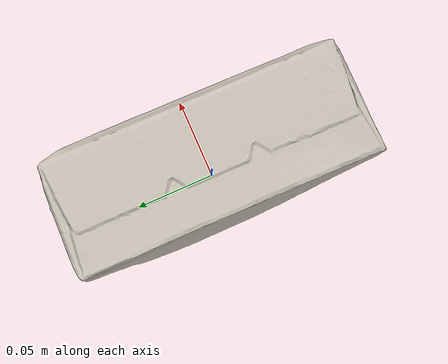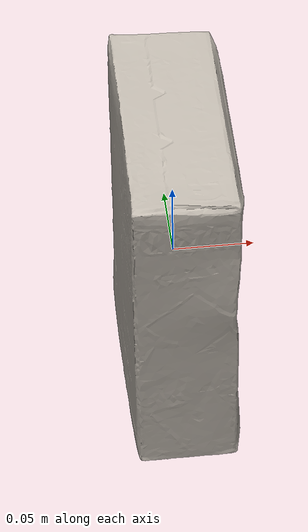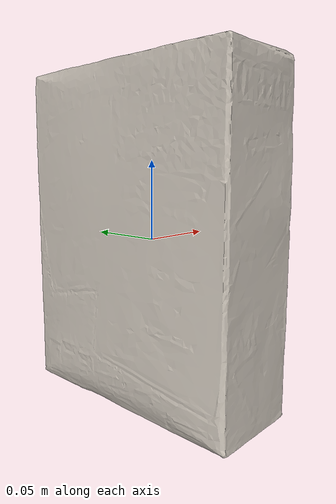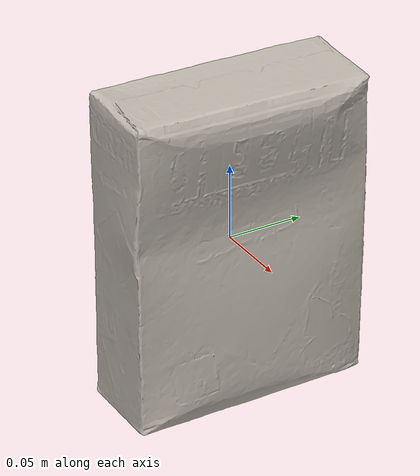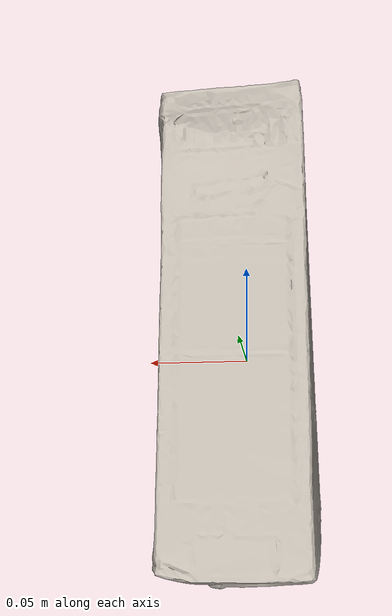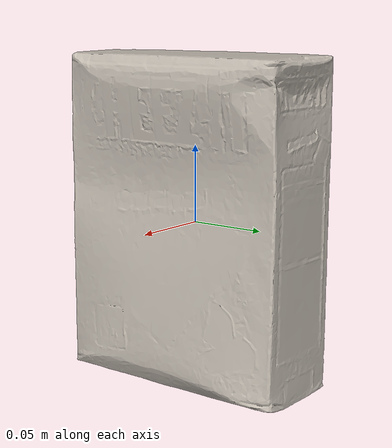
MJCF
<mujoco model="003_cracker_box">
  <compiler meshdir="assets" texturedir="assets"/>

  <default>
    <default class="ycb_visual">
      <geom group="2" type="mesh" contype="0" conaffinity="0" mass="0"/>
    </default>
    <default class="ycb_collision">
      <geom group="3" type="mesh" condim="6" priority="1" solref="0.01 1" solimp="0.99 0.999 0.001 0.5 1"/>
    </default>
  </default>

  <asset>
    <texture type="2d" name="texture_map" file="texture_map.png"/>
    <material name="material_0" texture="texture_map"/>
    <mesh file="003_cracker_box.obj"/>
  </asset>

  <worldbody>
    <body name="body">
      <inertial pos="0 0 0" mass="0.1" diaginertia="0.00239573 0.00168228 0.00099934"/>
      <joint name="joint" type='free' damping="0.005"/>
      <geom name="visual_geom" material="material_0" mesh="003_cracker_box" class="ycb_visual"/>
      <geom name="collision_geom_0" type="box" size="0.03 0.079 0.105" class="ycb_collision"/>
      <site name="barcode" group="4" rgba="1 0 0 1" pos="-0.010259 0.050995 -0.10498" quat="0 0.707107 0.707107 0"/>
    </body>
  </worldbody>
</mujoco>
